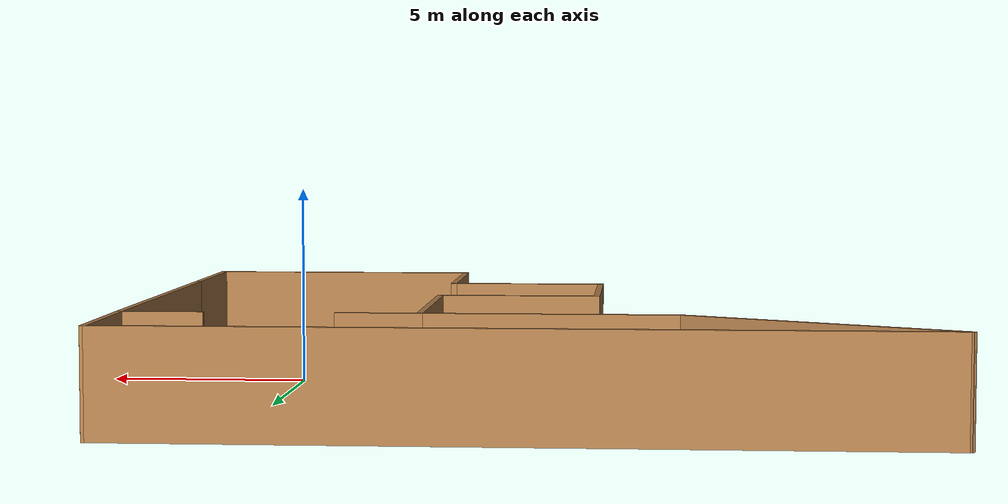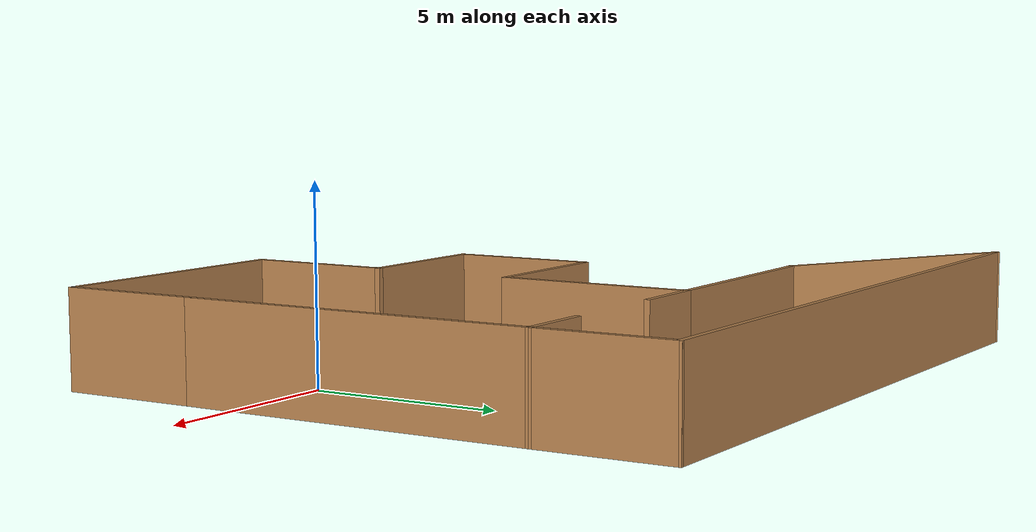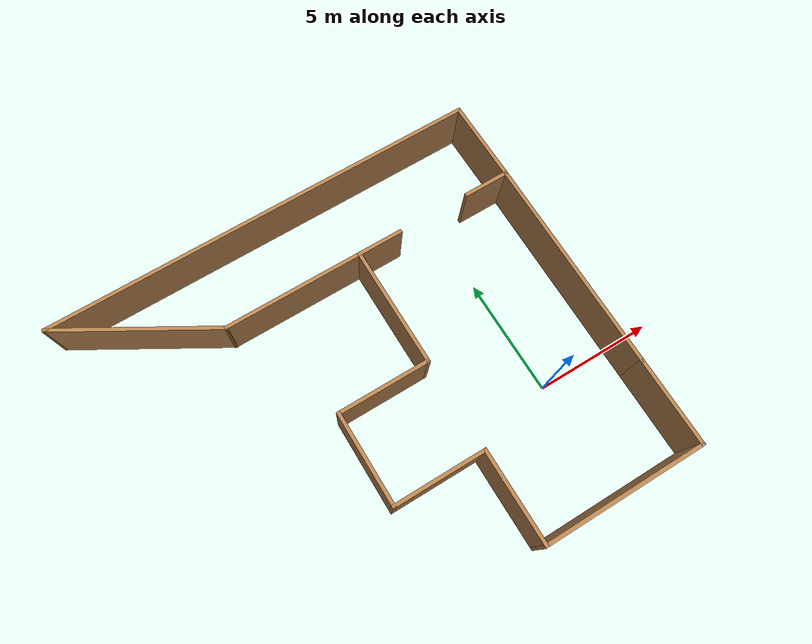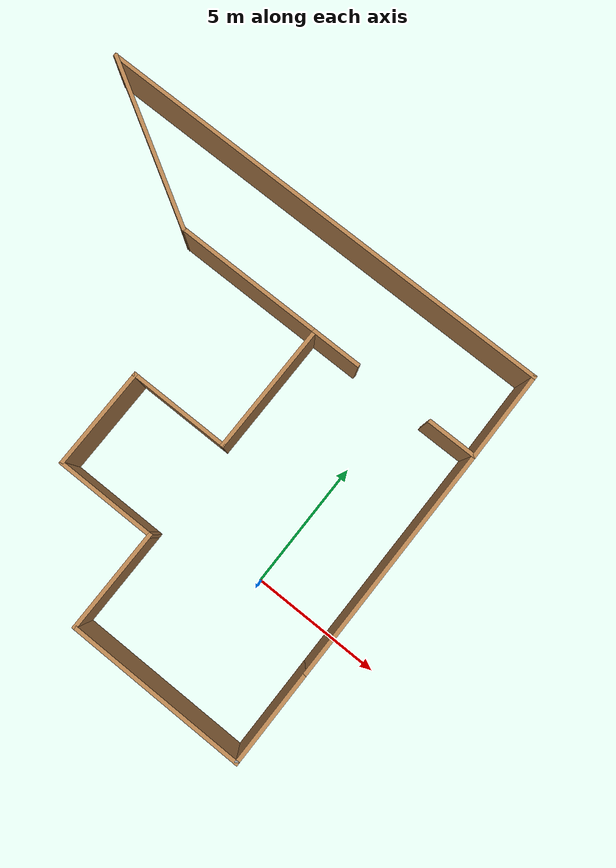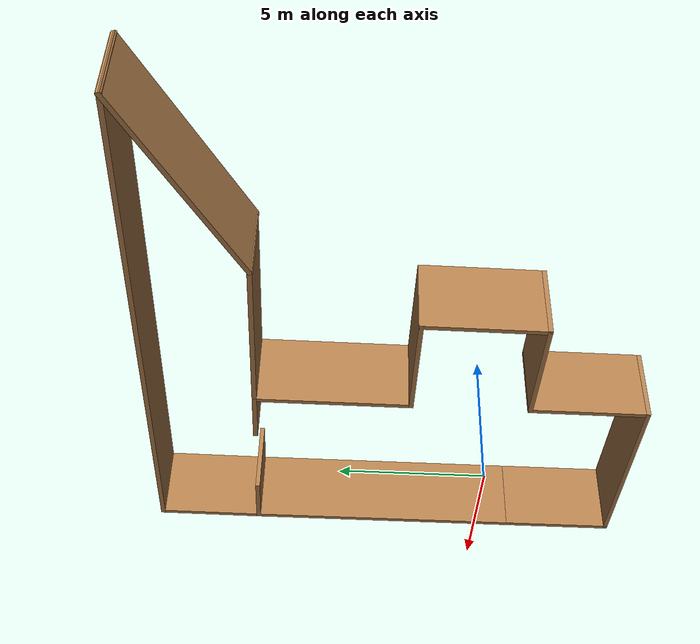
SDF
<?xml version='1.0'?>
<sdf version='1.6'>
  <model name='House'>
    <pose frame=''>-6.30943 3.20626 0 0 -0 0</pose>
    <link name='Wall_1'>
      <collision name='Wall_1_Collision'>
        <geometry>
          <box>
            <size>7 0.15 2.5</size>
          </box>
        </geometry>
        <pose frame=''>0 0 1.25 0 -0 0</pose>
      </collision>
      <visual name='Wall_1_Visual'>
        <pose frame=''>0 0 1.25 0 -0 0</pose>
        <geometry>
          <box>
            <size>7 0.15 2.5</size>
          </box>
        </geometry>
        <material>
          <script>
            <uri>file://media/materials/scripts/gazebo.material</uri>
            <name>Gazebo/Wood</name>
          </script>
          <ambient>1 1 1 1</ambient>
        </material>
        <meta>
          <layer>0</layer>
        </meta>
      </visual>
      <pose frame=''>5.90443 -8.07626 0 0 -0 0</pose>
    </link>
    <link name='Wall_13'>
      <collision name='Wall_13_Collision'>
        <geometry>
          <box>
            <size>5 0.15 2.5</size>
          </box>
        </geometry>
        <pose frame=''>0 0 1.25 0 -0 0</pose>
      </collision>
      <visual name='Wall_13_Visual'>
        <pose frame=''>0 0 1.25 0 -0 0</pose>
        <geometry>
          <box>
            <size>5 0.15 2.5</size>
          </box>
        </geometry>
        <material>
          <script>
            <uri>file://media/materials/scripts/gazebo.material</uri>
            <name>Gazebo/Wood</name>
          </script>
          <ambient>1 1 1 1</ambient>
        </material>
        <meta>
          <layer>0</layer>
        </meta>
      </visual>
      <pose frame=''>2.47943 2.04874 0 0 -0 1.5708</pose>
    </link>
    <link name='Wall_15'>
      <collision name='Wall_15_Collision'>
        <geometry>
          <box>
            <size>9.25 0.15 2.5</size>
          </box>
        </geometry>
        <pose frame=''>0 0 1.25 0 -0 0</pose>
      </collision>
      <visual name='Wall_15_Visual'>
        <pose frame=''>0 0 1.25 0 -0 0</pose>
        <geometry>
          <box>
            <size>9.25 0.15 2.5</size>
          </box>
        </geometry>
        <material>
          <script>
            <uri>file://media/materials/scripts/gazebo.material</uri>
            <name>Gazebo/Wood</name>
          </script>
          <ambient>1 1 1 1</ambient>
        </material>
        <meta>
          <layer>0</layer>
        </meta>
      </visual>
      <pose frame=''>9.32943 0.073744 0 0 -0 1.5708</pose>
    </link>
    <link name='Wall_18'>
      <collision name='Wall_18_Collision'>
        <geometry>
          <box>
            <size>6 0.15 2.5</size>
          </box>
        </geometry>
        <pose frame=''>0 0 1.25 0 -0 0</pose>
      </collision>
      <visual name='Wall_18_Visual'>
        <pose frame=''>0 0 1.25 0 -0 0</pose>
        <geometry>
          <box>
            <size>6 0.15 2.5</size>
          </box>
        </geometry>
        <material>
          <script>
            <uri>file://media/materials/scripts/gazebo.material</uri>
            <name>Gazebo/Wood</name>
          </script>
          <ambient>1 1 1 1</ambient>
        </material>
        <meta>
          <layer>0</layer>
        </meta>
      </visual>
      <pose frame=''>-0.445571 4.62374 0 0 -0 3.14159</pose>
    </link>
    <link name='Wall_2'>
      <collision name='Wall_2_Collision'>
        <geometry>
          <box>
            <size>0.15 0.15 2.5</size>
          </box>
        </geometry>
        <pose frame=''>0 0 1.25 0 -0 0</pose>
      </collision>
      <visual name='Wall_2_Visual'>
        <pose frame=''>0 0 1.25 0 -0 0</pose>
        <geometry>
          <box>
            <size>0.15 0.15 2.5</size>
          </box>
        </geometry>
        <material>
          <script>
            <uri>file://media/materials/scripts/gazebo.material</uri>
            <name>Gazebo/Grey</name>
          </script>
          <ambient>1 1 1 1</ambient>
        </material>
        <meta>
          <layer>0</layer>
        </meta>
      </visual>
      <pose frame=''>9.32943 -8.07626 0 0 -0 0</pose>
    </link>
    <link name='Wall_20'>
      <collision name='Wall_20_Collision'>
        <geometry>
          <box>
            <size>7 0.15 2.5</size>
          </box>
        </geometry>
        <pose frame=''>0 0 1.25 0 -0 0</pose>
      </collision>
      <visual name='Wall_20_Visual'>
        <pose frame=''>0 0 1.25 0 -0 0</pose>
        <geometry>
          <box>
            <size>7 0.15 2.5</size>
          </box>
        </geometry>
        <material>
          <script>
            <uri>file://media/materials/scripts/gazebo.material</uri>
            <name>Gazebo/Wood</name>
          </script>
          <ambient>1 1 1 1</ambient>
        </material>
        <meta>
          <layer>0</layer>
        </meta>
      </visual>
      <pose frame=''>-6.33657 6.33624 0 0 -0 2.61797</pose>
    </link>
    <link name='Wall_21'>
      <collision name='Wall_21_Collision'>
        <geometry>
          <box>
            <size>18.75 0.15 2.5</size>
          </box>
        </geometry>
        <pose frame=''>0 0 1.25 0 -0 0</pose>
      </collision>
      <visual name='Wall_21_Visual'>
        <pose frame=''>0 0 1.25 0 -0 0</pose>
        <geometry>
          <box>
            <size>18.75 0.15 2.5</size>
          </box>
        </geometry>
        <material>
          <script>
            <uri>file://media/materials/scripts/gazebo.material</uri>
            <name>Gazebo/Wood</name>
          </script>
          <ambient>1 1 1 1</ambient>
        </material>
        <meta>
          <layer>0</layer>
        </meta>
      </visual>
      <pose frame=''>-0.002571 8.04874 0 0 -0 0</pose>
    </link>
    <link name='Wall_22'>
      <collision name='Wall_22_Collision'>
        <geometry>
          <box>
            <size>3.57515 0.15 2.5</size>
          </box>
        </geometry>
        <pose frame=''>0 0 1.25 0 -0 0</pose>
      </collision>
      <visual name='Wall_22_Visual'>
        <pose frame=''>0 0 1.25 0 -0 0</pose>
        <geometry>
          <box>
            <size>3.57515 0.15 2.5</size>
          </box>
        </geometry>
        <material>
          <script>
            <uri>file://media/materials/scripts/gazebo.material</uri>
            <name>Gazebo/Wood</name>
          </script>
          <ambient>1 1 1 1</ambient>
        </material>
        <meta>
          <layer>0</layer>
        </meta>
      </visual>
      <pose frame=''>9.31343 6.33624 0 0 -0 -1.56145</pose>
    </link>
    <link name='Wall_24'>
      <collision name='Wall_24_Collision'>
        <geometry>
          <box>
            <size>2 0.15 2.5</size>
          </box>
        </geometry>
        <pose frame=''>0 0 1.25 0 -0 0</pose>
      </collision>
      <visual name='Wall_24_Visual'>
        <pose frame=''>0 0 1.25 0 -0 0</pose>
        <geometry>
          <box>
            <size>2 0.15 2.5</size>
          </box>
        </geometry>
        <material>
          <script>
            <uri>file://media/materials/scripts/gazebo.material</uri>
            <name>Gazebo/Wood</name>
          </script>
          <ambient>1 1 1 1</ambient>
        </material>
        <meta>
          <layer>0</layer>
        </meta>
      </visual>
      <pose frame=''>3.40443 4.62374 0 0 -0 0</pose>
    </link>
    <link name='Wall_26'>
      <collision name='Wall_26_Collision'>
        <geometry>
          <box>
            <size>2 0.15 2.5</size>
          </box>
        </geometry>
        <pose frame=''>0 0 1.25 0 -0 0</pose>
      </collision>
      <visual name='Wall_26_Visual'>
        <pose frame=''>0 0 1.25 0 -0 0</pose>
        <geometry>
          <box>
            <size>2 0.15 2.5</size>
          </box>
        </geometry>
        <material>
          <script>
            <uri>file://media/materials/scripts/gazebo.material</uri>
            <name>Gazebo/Wood</name>
          </script>
          <ambient>1 1 1 1</ambient>
        </material>
        <meta>
          <layer>0</layer>
        </meta>
      </visual>
      <pose frame=''>8.40443 4.62374 0 0 -0 3.14159</pose>
    </link>
    <link name='Wall_3'>
      <collision name='Wall_3_Collision'>
        <geometry>
          <box>
            <size>3.75 0.15 2.5</size>
          </box>
        </geometry>
        <pose frame=''>0 0 1.25 0 -0 0</pose>
      </collision>
      <visual name='Wall_3_Visual'>
        <pose frame=''>0 0 1.25 0 -0 0</pose>
        <geometry>
          <box>
            <size>3.75 0.15 2.5</size>
          </box>
        </geometry>
        <material>
          <script>
            <uri>file://media/materials/scripts/gazebo.material</uri>
            <name>Gazebo/Wood</name>
          </script>
          <ambient>1 1 1 1</ambient>
        </material>
        <meta>
          <layer>0</layer>
        </meta>
      </visual>
      <pose frame=''>9.32943 -6.27626 0 0 -0 1.5708</pose>
    </link>
    <link name='Wall_5'>
      <collision name='Wall_5_Collision'>
        <geometry>
          <box>
            <size>4 0.15 2.5</size>
          </box>
        </geometry>
        <pose frame=''>0 0 1.25 0 -0 0</pose>
      </collision>
      <visual name='Wall_5_Visual'>
        <pose frame=''>0 0 1.25 0 -0 0</pose>
        <geometry>
          <box>
            <size>4 0.15 2.5</size>
          </box>
        </geometry>
        <material>
          <script>
            <uri>file://media/materials/scripts/gazebo.material</uri>
            <name>Gazebo/Wood</name>
          </script>
          <ambient>1 1 1 1</ambient>
        </material>
        <meta>
          <layer>0</layer>
        </meta>
      </visual>
      <pose frame=''>2.47943 -6.15126 0 0 -0 1.5708</pose>
    </link>
    <link name='Wall_7'>
      <collision name='Wall_7_Collision'>
        <geometry>
          <box>
            <size>4 0.15 2.5</size>
          </box>
        </geometry>
        <pose frame=''>0 0 1.25 0 -0 0</pose>
      </collision>
      <visual name='Wall_7_Visual'>
        <pose frame=''>0 0 1.25 0 -0 0</pose>
        <geometry>
          <box>
            <size>4 0.15 2.5</size>
          </box>
        </geometry>
        <material>
          <script>
            <uri>file://media/materials/scripts/gazebo.material</uri>
            <name>Gazebo/Wood</name>
          </script>
          <ambient>1 1 1 1</ambient>
        </material>
        <meta>
          <layer>0</layer>
        </meta>
      </visual>
      <pose frame=''>0.554429 -4.22626 0 0 -0 3.14159</pose>
    </link>
    <link name='Wall_8'>
      <collision name='Wall_8_Collision'>
        <geometry>
          <box>
            <size>4 0.15 2.5</size>
          </box>
        </geometry>
        <pose frame=''>0 0 1.25 0 -0 0</pose>
      </collision>
      <visual name='Wall_8_Visual'>
        <pose frame=''>0 0 1.25 0 -0 0</pose>
        <geometry>
          <box>
            <size>4 0.15 2.5</size>
          </box>
        </geometry>
        <material>
          <script>
            <uri>file://media/materials/scripts/gazebo.material</uri>
            <name>Gazebo/Wood</name>
          </script>
          <ambient>1 1 1 1</ambient>
        </material>
        <meta>
          <layer>0</layer>
        </meta>
      </visual>
      <pose frame=''>-1.37057 -2.30126 0 0 -0 1.5708</pose>
    </link>
    <link name='Wall_9'>
      <collision name='Wall_9_Collision'>
        <geometry>
          <box>
            <size>4 0.15 2.5</size>
          </box>
        </geometry>
        <pose frame=''>0 0 1.25 0 -0 0</pose>
      </collision>
      <visual name='Wall_9_Visual'>
        <pose frame=''>0 0 1.25 0 -0 0</pose>
        <geometry>
          <box>
            <size>4 0.15 2.5</size>
          </box>
        </geometry>
        <material>
          <script>
            <uri>file://media/materials/scripts/gazebo.material</uri>
            <name>Gazebo/Wood</name>
          </script>
          <ambient>1 1 1 1</ambient>
        </material>
        <meta>
          <layer>0</layer>
        </meta>
      </visual>
      <pose frame=''>0.554429 -0.376256 0 0 -0 0</pose>
    </link>
    <static>1</static>
  </model>
</sdf>
